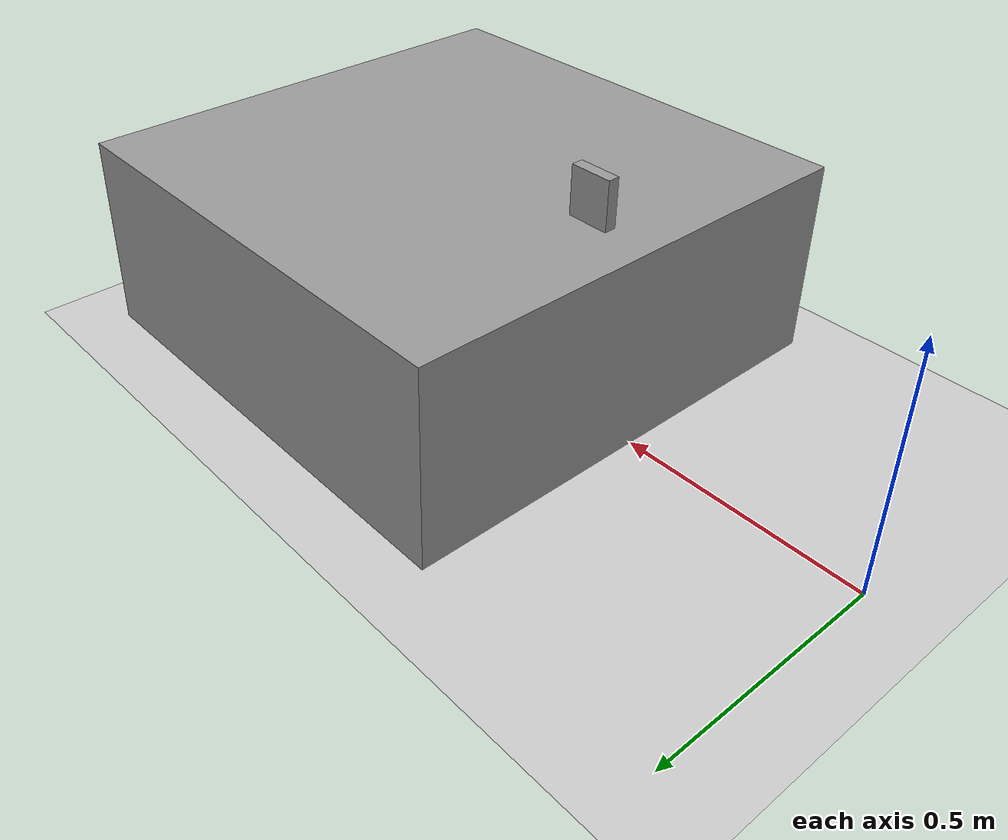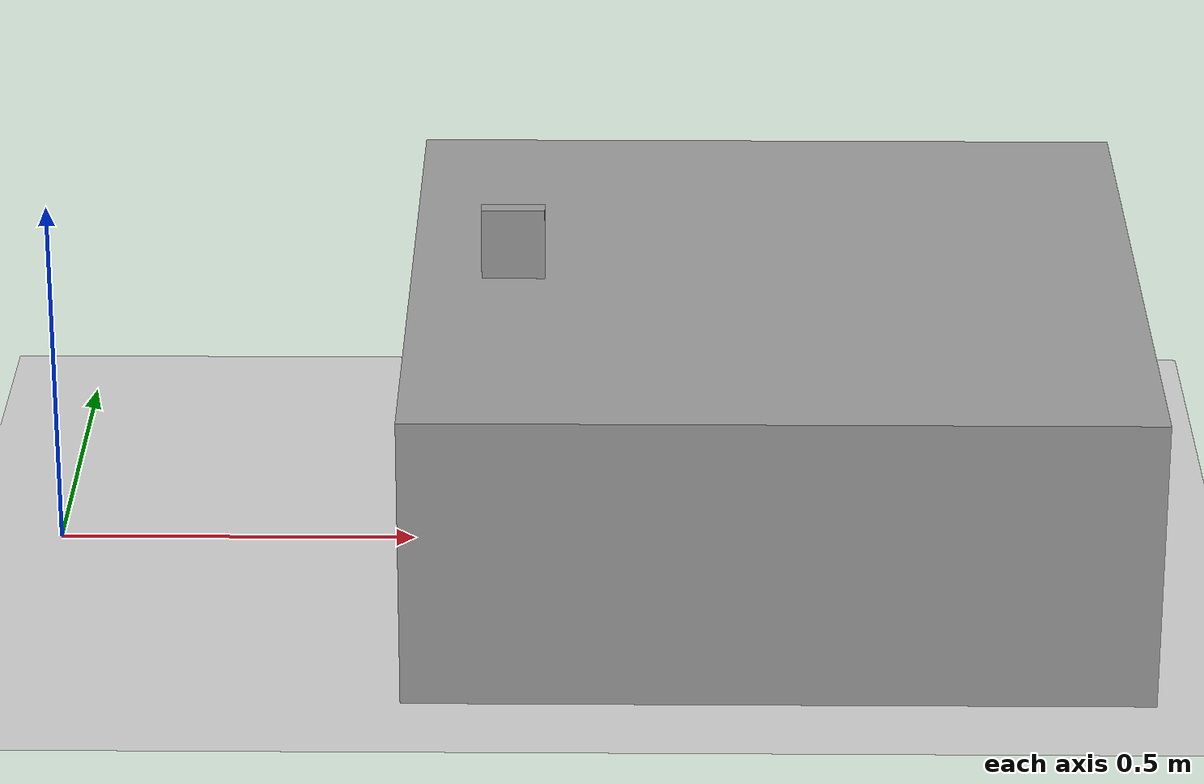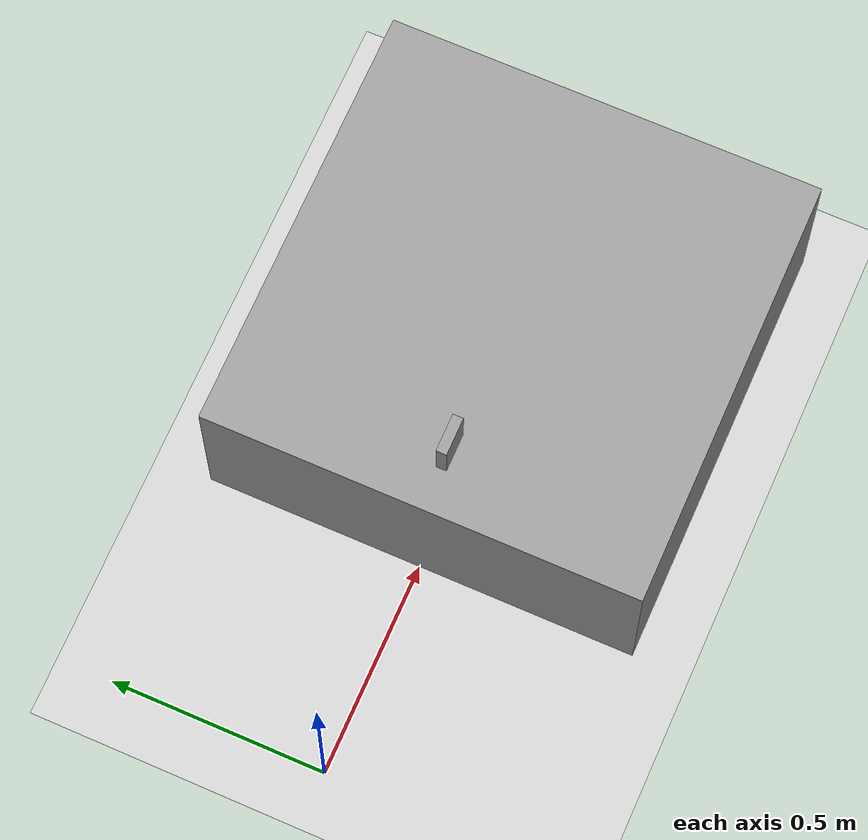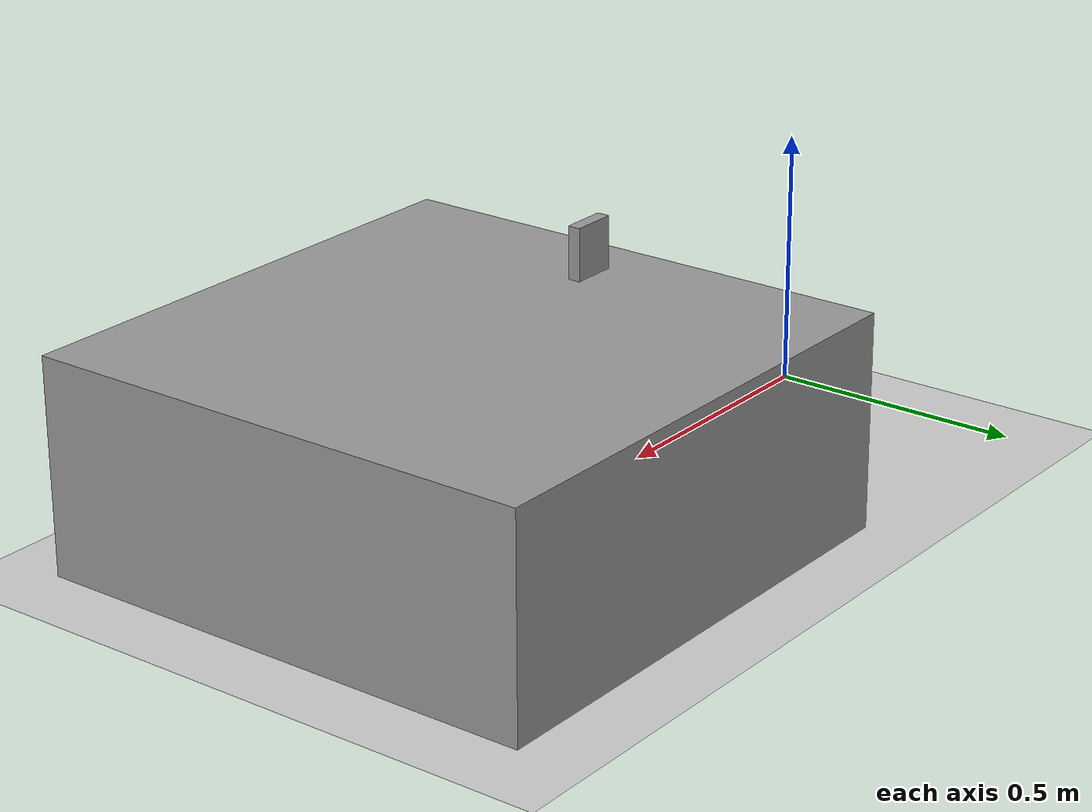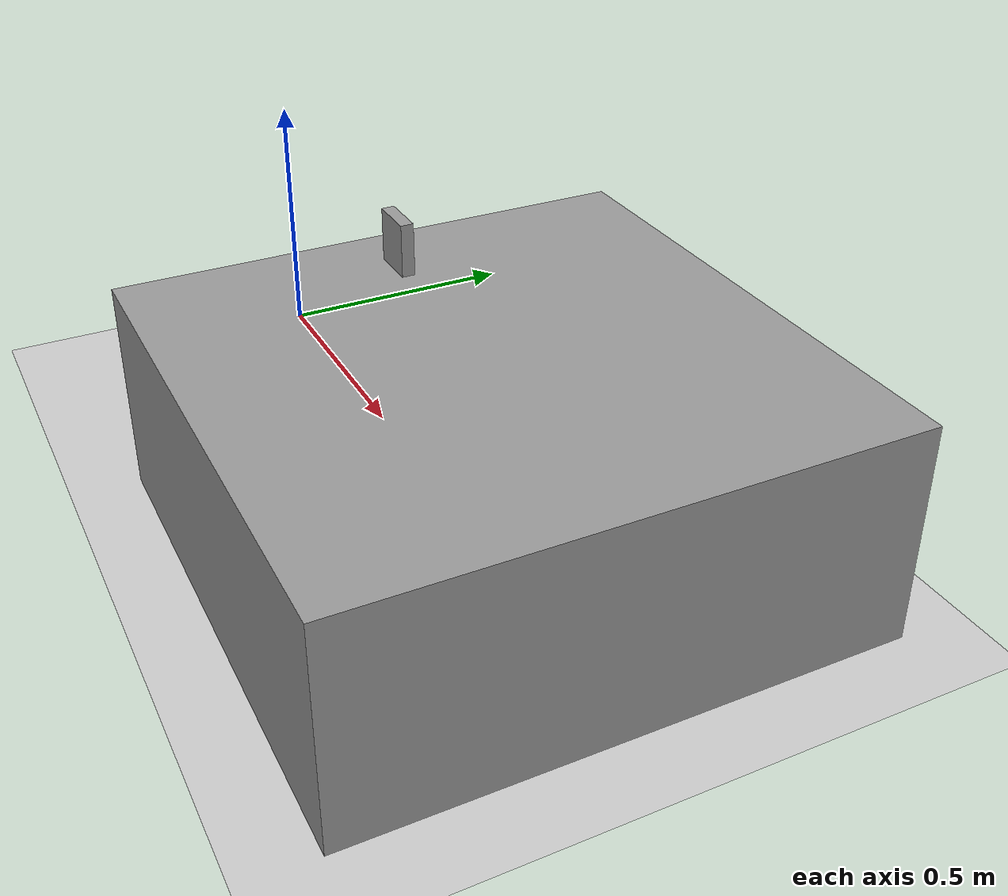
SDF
<sdf version="1.4">
 <world name="prueba1">
  <model name="ground_plane">
   <static>1</static>
   <link name="link">
    <collision name="collision">
     <geometry><plane><normal>0 0 1</normal><size>100 100</size></plane></geometry>
     <surface><friction><ode><mu>100</mu><mu2>50</mu2></ode></friction></surface>
    </collision>
    <visual name="visual">
     <cast_shadows>0</cast_shadows>
     <geometry><plane><normal>0 0 1</normal><size>100 100</size></plane></geometry>
     <material>
      <script><uri>file://media/materials/scripts/gazebo.material</uri><name>Gazebo/Grey</name></script>
     </material>
    </visual>
    <velocity_decay><linear>0</linear><angular>0</angular></velocity_decay>
   </link>
  </model>
  <light name="sun" type="directional">
   <pose>0 0 10 0 -0 0</pose>
   <diffuse>0.8 0.8 0.8 1</diffuse>
   <specular>0.2 0.2 0.2 1</specular>
   <attenuation>
    <range>1000</range>
    <constant>0.9</constant>
    <linear>0.01</linear>
    <quadratic>0.001</quadratic>
   </attenuation>
   <direction>-0.5 0.1 -0.9</direction>
  </light>
  <physics type="ode">
   <max_step_size>0.001</max_step_size>
   <real_time_factor>1</real_time_factor>
   <real_time_update_rate>1000</real_time_update_rate>
   <gravity>0 0 -9.8</gravity>
  </physics>
  <scene><ambient>0.4 0.4 0.4 1</ambient><background>0.7 0.7 0.7 1</background><shadows>1</shadows></scene>
  <spherical_coordinates>
   <surface_model>EARTH_WGS84</surface_model>
   <latitude_deg>0</latitude_deg>
   <longitude_deg>0</longitude_deg>
   <elevation>0</elevation>
   <heading_deg>0</heading_deg>
  </spherical_coordinates>
  <model name="unit_box_1">
   <static>1</static>
   <pose>1.001 4.9e-05 0.203544 4.03897e-28 -3e-06 1e-06</pose>
   <link name="link">
    <inertial>
     <mass>1</mass>
     <inertia><ixx>1</ixx><ixy>0</ixy><ixz>0</ixz><iyy>1</iyy><iyz>0</iyz><izz>1</izz></inertia>
    </inertial>
    <collision name="collision"><geometry><box><size>1 1 0.407127</size></box></geometry></collision>
    <visual name="visual">
     <geometry><box><size>1 1 0.407127</size></box></geometry>
     <material>
      <script><uri>file://media/materials/scripts/gazebo.material</uri><name>Gazebo/Grey</name></script>
     </material>
    </visual>
    <velocity_decay><linear>0</linear><angular>0</angular></velocity_decay>
   </link>
   <static>0</static>
  </model>
  <model name="unit_box_3">
   <pose>0.641724 -0.008631 0.457142 0.000107 1e-05 0.001914</pose>
   <link name="link">
    <inertial>
     <mass>0.1</mass>
     <inertia><ixx>0.0001</ixx><ixy>0</ixy><ixz>0</ixz><iyy>0.0001</iyy><iyz>0</iyz><izz>0.0001</izz></inertia>
    </inertial>
    <collision name="collision">
     <geometry><box><size>0.087152 0.024171 0.100067</size></box></geometry>
     <surface><friction><ode><mu>0.02</mu><mu2>0.02</mu2></ode></friction></surface>
    </collision>
    <visual name="visual">
     <geometry><box><size>0.087152 0.024171 0.100067</size></box></geometry>
     <material>
      <script><uri>file://media/materials/scripts/gazebo.material</uri><name>Gazebo/Grey</name></script>
     </material>
    </visual>
    <velocity_decay><linear>0</linear><angular>0</angular></velocity_decay>
   </link>
   <static>0</static>
  </model>
 </world>
</sdf>
